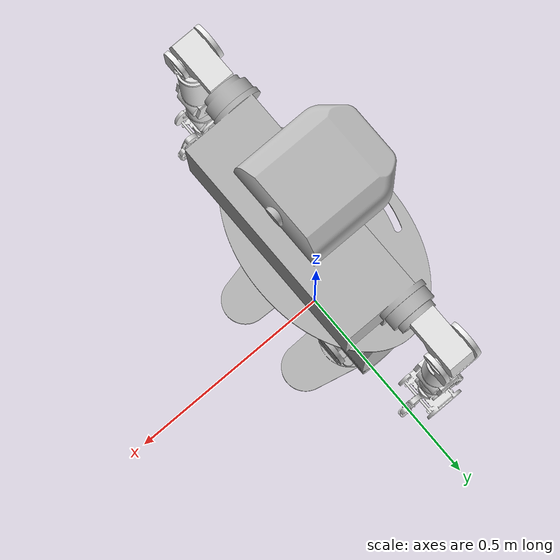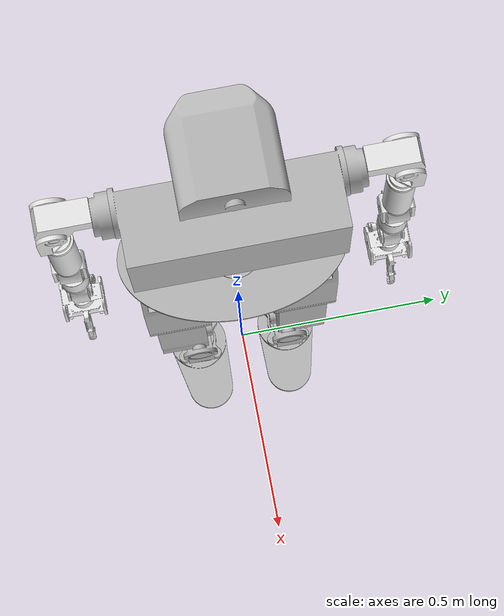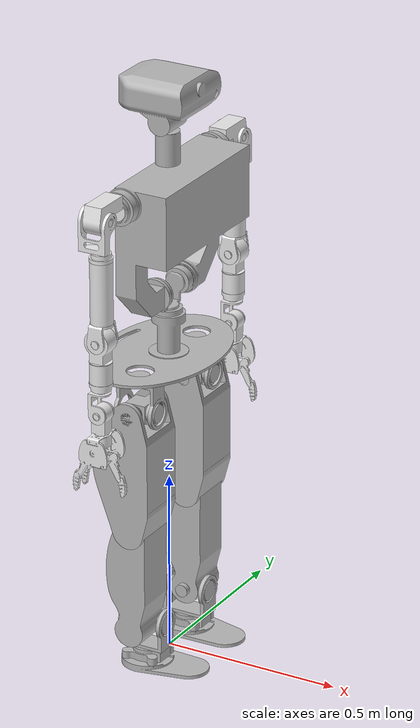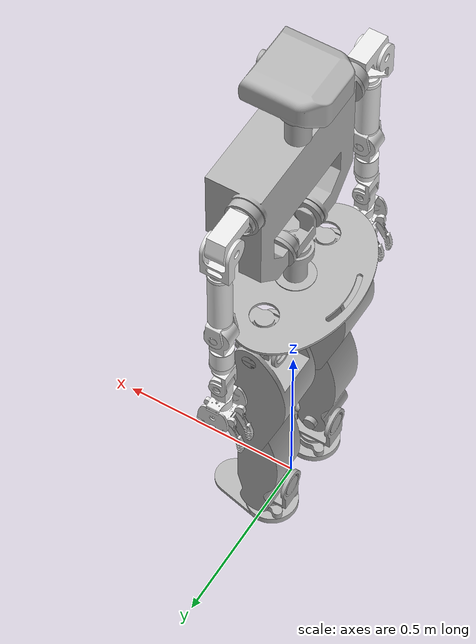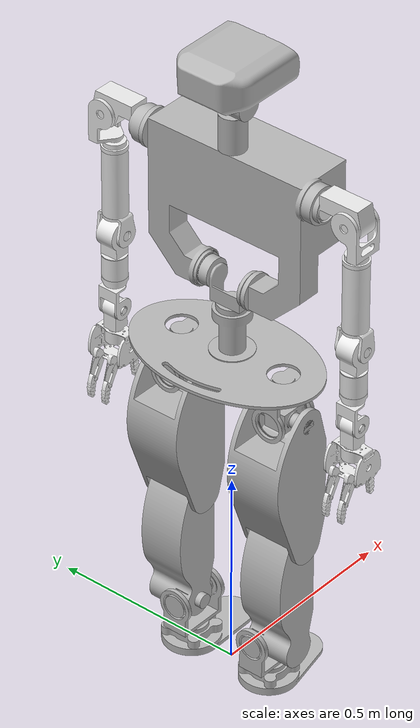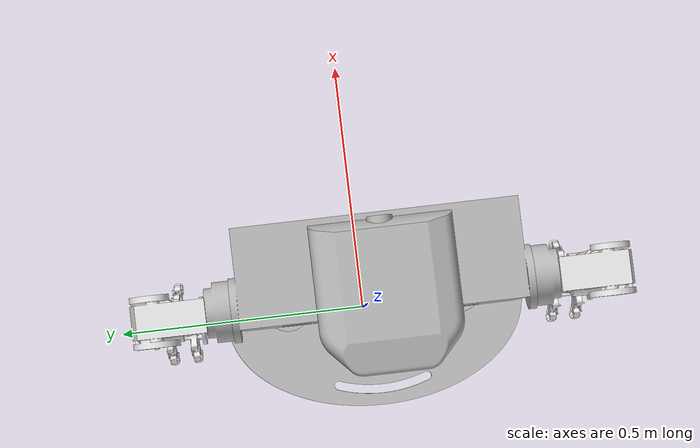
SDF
<sdf version="1.4">
 <model name="teo">
  <pose>0 0 0.856 0 0 0</pose>
  <link name="waist">
   <inertial>
    <pose>0 0 0.030531 0 -0 0</pose>
    <mass>1</mass>
    <inertia>
     <ixx>0.0167296</ixx>
     <ixy>-4.1e-07</ixy>
     <ixz>-0.00040359</ixz>
     <iyy>0.00875441</iyy>
     <iyz>8e-08</iyz>
     <izz>0.020584</izz>
    </inertia>
   </inertial>
   <collision name="waist_collision">
    <geometry>
     <mesh><scale>1 1 1</scale><uri>model://teo_description/meshes/torso/waist-base.stl</uri></mesh>
    </geometry>
   </collision>
   <collision name="waist_collision_waist_1">
    <pose>0 0 0.07336 0 -0 0</pose>
    <geometry>
     <mesh><scale>1 1 1</scale><uri>model://teo_description/meshes/torso/waist-link.stl</uri></mesh>
    </geometry>
   </collision>
   <visual name="waist_visual">
    <geometry>
     <mesh><scale>1 1 1</scale><uri>model://teo_description/meshes/torso/waist-base.stl</uri></mesh>
    </geometry>
   </visual>
   <visual name="waist_visual_waist_1">
    <pose>0 0 0.07336 0 -0 0</pose>
    <geometry>
     <mesh><scale>1 1 1</scale><uri>model://teo_description/meshes/torso/waist-link.stl</uri></mesh>
    </geometry>
   </visual>
   <velocity_decay><linear>0</linear><angular>0</angular></velocity_decay>
  </link>
  <joint name="base_joint" type="revolute">
   <parent>world</parent>
   <child>waist</child>
   <axis>
    <limit><lower>0</lower><upper>0</upper></limit>
    <dynamics><damping>0</damping></dynamics>
    <xyz>0 0 1</xyz>
   </axis>
  </joint>
  <link name="l_hip_yaw_link">
   <pose>0 0.146 -0.10237 0 -0 0</pose>
   <inertial>
    <mass>1</mass>
    <inertia>
     <ixx>0.00034076</ixx>
     <ixy>-0</ixy>
     <ixz>5.4e-07</ixz>
     <iyy>0.00057638</iyy>
     <iyz>-0</iyz>
     <izz>0.00037186</izz>
    </inertia>
   </inertial>
   <collision name="l_hip_yaw_link_collision">
    <geometry>
     <mesh><scale>1 1 1</scale><uri>model://teo_description/meshes/legs/l_hip_yaw.stl</uri></mesh>
    </geometry>
    <surface><friction><ode><mu>0.9</mu><mu2>0.9</mu2></ode></friction></surface>
   </collision>
   <visual name="l_hip_yaw_link_visual">
    <geometry>
     <mesh><scale>1 1 1</scale><uri>model://teo_description/meshes/legs/l_hip_yaw.stl</uri></mesh>
    </geometry>
   </visual>
   <velocity_decay><linear>0</linear><angular>0</angular></velocity_decay>
  </link>
  <joint name="l_hip_yaw" type="revolute">
   <child>l_hip_yaw_link</child>
   <parent>waist</parent>
   <axis>
    <xyz>0 0 1</xyz>
    <limit><lower>-0.523599</lower><upper>0.418879</upper><effort>45</effort><velocity>4</velocity></limit>
    <dynamics><damping>1</damping></dynamics>
   </axis>
  </joint>
  <link name="l_hip_roll_link">
   <pose>0 0.146 -0.10237 0 -0 0</pose>
   <inertial>
    <pose>0 -0 -0.017753 0 -0 0</pose>
    <mass>1</mass>
    <inertia>
     <ixx>0.00036847</ixx>
     <ixy>-4.34e-06</ixy>
     <ixz>1e-08</ixz>
     <iyy>0.00019052</iyy>
     <iyz>-0</iyz>
     <izz>0.00045536</izz>
    </inertia>
   </inertial>
   <collision name="l_hip_roll_link_collision">
    <geometry>
     <mesh><scale>1 1 1</scale><uri>model://teo_description/meshes/legs/l_hip_pitch.stl</uri></mesh>
    </geometry>
    <surface><friction><ode><mu>0.9</mu><mu2>0.9</mu2></ode></friction></surface>
   </collision>
   <visual name="l_hip_roll_link_visual">
    <geometry>
     <mesh><scale>1 1 1</scale><uri>model://teo_description/meshes/legs/l_hip_pitch.stl</uri></mesh>
    </geometry>
   </visual>
   <velocity_decay><linear>0</linear><angular>0</angular></velocity_decay>
  </link>
  <joint name="l_hip_roll" type="revolute">
   <child>l_hip_roll_link</child>
   <parent>l_hip_yaw_link</parent>
   <axis>
    <xyz>1 0 0</xyz>
    <limit><lower>-0.698132</lower><upper>0.523599</upper><effort>65</effort><velocity>4</velocity></limit>
    <dynamics><damping>1</damping></dynamics>
   </axis>
  </joint>
  <link name="l_femur_link">
   <pose>0 0.146 -0.10237 0 -0 0</pose>
   <inertial>
    <pose>0 -0 -0.17257 0 -0 0</pose>
    <mass>1</mass>
    <inertia>
     <ixx>0.0445365</ixx>
     <ixy>1e-08</ixy>
     <ixz>0.00130498</ixz>
     <iyy>0.0446349</iyy>
     <iyz>-4e-08</iyz>
     <izz>0.0220708</izz>
    </inertia>
   </inertial>
   <collision name="l_femur_link_collision">
    <geometry>
     <mesh><scale>1 1 1</scale><uri>model://teo_description/meshes/legs/l_femur.stl</uri></mesh>
    </geometry>
    <surface><friction><ode><mu>0.9</mu><mu2>0.9</mu2></ode></friction></surface>
   </collision>
   <visual name="l_femur_link_visual">
    <geometry>
     <mesh><scale>1 1 1</scale><uri>model://teo_description/meshes/legs/l_femur.stl</uri></mesh>
    </geometry>
   </visual>
   <velocity_decay><linear>0</linear><angular>0</angular></velocity_decay>
  </link>
  <joint name="l_hip_pitch" type="revolute">
   <child>l_femur_link</child>
   <parent>l_hip_roll_link</parent>
   <axis>
    <xyz>0 1 0</xyz>
    <limit><lower>-2.0944</lower><upper>0.785398</upper><effort>60</effort><velocity>4</velocity></limit>
    <dynamics><damping>1</damping></dynamics>
   </axis>
  </joint>
  <link name="l_tibia_link">
   <pose>0 0.146 -0.43237 0 -0 0</pose>
   <inertial>
    <pose>0 -0 -0.142721 0 -0 0</pose>
    <mass>1</mass>
    <inertia>
     <ixx>0.0464421</ixx>
     <ixy>-0</ixy>
     <ixz>-7.32e-06</ixz>
     <iyy>0.0454827</iyy>
     <iyz>1e-08</iyz>
     <izz>0.00816616</izz>
    </inertia>
   </inertial>
   <collision name="l_tibia_link_collision">
    <geometry>
     <mesh><scale>1 1 1</scale><uri>model://teo_description/meshes/legs/l_tibia.stl</uri></mesh>
    </geometry>
    <surface><friction><ode><mu>0.9</mu><mu2>0.9</mu2></ode></friction></surface>
   </collision>
   <visual name="l_tibia_link_visual">
    <geometry>
     <mesh><scale>1 1 1</scale><uri>model://teo_description/meshes/legs/l_tibia.stl</uri></mesh>
    </geometry>
   </visual>
   <velocity_decay><linear>0</linear><angular>0</angular></velocity_decay>
  </link>
  <joint name="l_knee_pitch" type="revolute">
   <child>l_tibia_link</child>
   <parent>l_femur_link</parent>
   <axis>
    <xyz>0 1 0</xyz>
    <limit><lower>0</lower><upper>1.5708</upper><effort>140</effort><velocity>4</velocity></limit>
    <dynamics><damping>1</damping></dynamics>
   </axis>
  </joint>
  <link name="l_ankle_pitch_link">
   <pose>0 0.113 -0.73237 0 -0 0</pose>
   <inertial>
    <pose>0 -0 0.028198 0 -0 0</pose>
    <mass>1</mass>
    <inertia>
     <ixx>0.00010237</ixx>
     <ixy>-1.4e-05</ixy>
     <ixz>0</ixz>
     <iyy>0.00035107</iyy>
     <iyz>0</iyz>
     <izz>0.00035006</izz>
    </inertia>
   </inertial>
   <collision name="l_ankle_pitch_link_collision">
    <geometry>
     <mesh><scale>1 1 1</scale><uri>model://teo_description/meshes/legs/l_ankle_pitch.stl</uri></mesh>
    </geometry>
    <surface><friction><ode><mu>0.9</mu><mu2>0.9</mu2></ode></friction></surface>
   </collision>
   <visual name="l_ankle_pitch_link_visual">
    <geometry>
     <mesh><scale>1 1 1</scale><uri>model://teo_description/meshes/legs/l_ankle_pitch.stl</uri></mesh>
    </geometry>
   </visual>
   <velocity_decay><linear>0</linear><angular>0</angular></velocity_decay>
  </link>
  <joint name="l_ankle_pitch" type="revolute">
   <child>l_ankle_pitch_link</child>
   <parent>l_tibia_link</parent>
   <axis>
    <xyz>0 1 0</xyz>
    <limit><lower>-0.349066</lower><upper>0.349066</upper><effort>85</effort><velocity>4</velocity></limit>
    <dynamics><damping>1</damping></dynamics>
   </axis>
  </joint>
  <link name="l_astragalus_link">
   <pose>0 0.113 -0.73237 0 -0 0</pose>
   <inertial>
    <pose>0.0113145 -0.001224 -0.077401 0 -0 0</pose>
    <mass>2</mass>
    <inertia>
     <ixx>0.00341467</ixx>
     <ixy>-7.94621e-05</ixy>
     <ixz>0.000895215</ixz>
     <iyy>0.0049938</iyy>
     <iyz>-7.78808e-05</iyz>
     <izz>0.00297552</izz>
    </inertia>
   </inertial>
   <collision name="l_astragalus_link_collision">
    <geometry>
     <mesh><scale>1 1 1</scale><uri>model://teo_description/meshes/legs/l_ankle_roll.stl</uri></mesh>
    </geometry>
    <surface>
     <contact><ode><kp>1e+06</kp><kd>100</kd><max_vel>1</max_vel><min_depth>0</min_depth></ode></contact>
     <friction><ode><mu>1</mu><mu2>1</mu2><fdir1>0 0 1</fdir1></ode></friction>
    </surface>
   </collision>
   <collision name="l_astragalus_link_collision_l_astragalus_link_1">
    <pose>0 0 -0.073 0 -0 0</pose>
    <geometry>
     <mesh><scale>1 1 1</scale><uri>model://teo_description/meshes/legs/l_ankle_sensorFT.stl</uri></mesh>
    </geometry>
    <surface>
     <contact><ode><kp>1e+06</kp><kd>100</kd><max_vel>1</max_vel><min_depth>0</min_depth></ode></contact>
     <friction><ode><mu>1</mu><mu2>1</mu2><fdir1>0 0 1</fdir1></ode></friction>
    </surface>
   </collision>
   <collision name="l_astragalus_link_collision_l_sole">
    <pose>0 0 -0.124 0 -0 0</pose>
    <geometry>
     <mesh><scale>1 1 1</scale><uri>model://teo_description/meshes/legs/l_foot.stl</uri></mesh>
    </geometry>
    <surface>
     <contact><ode><kp>1e+06</kp><kd>100</kd><max_vel>1</max_vel><min_depth>0</min_depth></ode></contact>
     <friction><ode><mu>1</mu><mu2>1</mu2><fdir1>0 0 1</fdir1></ode></friction>
    </surface>
    <surface>
     <contact><ode><max_vel>1</max_vel><min_depth>0.003</min_depth></ode></contact>
     <friction><ode><mu>0.9</mu><mu2>0.9</mu2><fdir1>1 0 0</fdir1></ode></friction>
    </surface>
   </collision>
   <collision name="l_astragalus_link_collision_l_sole_1">
    <pose>0 0 -0.124 0 -0 0</pose>
    <geometry>
     <mesh><scale>1 1 1</scale><uri>model://teo_description/meshes/legs/l_union_sensorFT_foot.stl</uri></mesh>
    </geometry>
    <surface>
     <contact><ode><kp>1e+06</kp><kd>100</kd><max_vel>1</max_vel><min_depth>0</min_depth></ode></contact>
     <friction><ode><mu>1</mu><mu2>1</mu2><fdir1>0 0 1</fdir1></ode></friction>
    </surface>
   </collision>
   <visual name="l_astragalus_link_visual">
    <geometry>
     <mesh><scale>1 1 1</scale><uri>model://teo_description/meshes/legs/l_ankle_roll.stl</uri></mesh>
    </geometry>
   </visual>
   <visual name="l_astragalus_link_visual_l_astragalus_link_1">
    <pose>0 0 -0.073 0 -0 0</pose>
    <geometry>
     <mesh><scale>1 1 1</scale><uri>model://teo_description/meshes/legs/l_ankle_sensorFT.stl</uri></mesh>
    </geometry>
   </visual>
   <visual name="l_astragalus_link_visual_l_sole">
    <pose>0 0 -0.124 0 -0 0</pose>
    <geometry>
     <mesh><scale>1 1 1</scale><uri>model://teo_description/meshes/legs/l_foot.stl</uri></mesh>
    </geometry>
   </visual>
   <visual name="l_astragalus_link_visual_l_sole_1">
    <pose>0 0 -0.124 0 -0 0</pose>
    <geometry>
     <mesh><scale>1 1 1</scale><uri>model://teo_description/meshes/legs/l_union_sensorFT_foot.stl</uri></mesh>
    </geometry>
   </visual>
   <velocity_decay><linear>0</linear><angular>0</angular></velocity_decay>
   <velocity_decay><linear>0</linear><angular>0</angular></velocity_decay>
  </link>
  <joint name="l_ankle_roll" type="revolute">
   <child>l_astragalus_link</child>
   <parent>l_ankle_pitch_link</parent>
   <axis>
    <xyz>1 0 0</xyz>
    <limit><lower>-1.48353</lower><upper>1.48353</upper><effort>65</effort><velocity>4</velocity></limit>
    <dynamics><damping>1</damping></dynamics>
   </axis>
  </joint>
  <link name="r_hip_yaw_link">
   <pose>0 -0.146 -0.10237 0 -0 0</pose>
   <inertial>
    <mass>1</mass>
    <inertia>
     <ixx>0.00034076</ixx>
     <ixy>0</ixy>
     <ixz>5.4e-07</ixz>
     <iyy>0.00057638</iyy>
     <iyz>0</iyz>
     <izz>0.00037186</izz>
    </inertia>
   </inertial>
   <collision name="r_hip_yaw_link_collision">
    <geometry>
     <mesh><scale>1 1 1</scale><uri>model://teo_description/meshes/legs/r_hip_yaw.stl</uri></mesh>
    </geometry>
    <surface><friction><ode><mu>0.9</mu><mu2>0.9</mu2></ode></friction></surface>
   </collision>
   <visual name="r_hip_yaw_link_visual">
    <geometry>
     <mesh><scale>1 1 1</scale><uri>model://teo_description/meshes/legs/r_hip_yaw.stl</uri></mesh>
    </geometry>
   </visual>
   <velocity_decay><linear>0</linear><angular>0</angular></velocity_decay>
  </link>
  <joint name="r_hip_yaw" type="revolute">
   <child>r_hip_yaw_link</child>
   <parent>waist</parent>
   <axis>
    <xyz>0 0 1</xyz>
    <limit><lower>-0.523599</lower><upper>0.418879</upper><effort>45</effort><velocity>4</velocity></limit>
    <dynamics><damping>1</damping></dynamics>
   </axis>
  </joint>
  <link name="r_hip_roll_link">
   <pose>0 -0.146 -0.10237 0 -0 0</pose>
   <inertial>
    <pose>0 0 -0.017753 0 -0 0</pose>
    <mass>1</mass>
    <inertia>
     <ixx>0.00036847</ixx>
     <ixy>4.34e-06</ixy>
     <ixz>1e-08</ixz>
     <iyy>0.00019052</iyy>
     <iyz>0</iyz>
     <izz>0.00045536</izz>
    </inertia>
   </inertial>
   <collision name="r_hip_roll_link_collision">
    <geometry>
     <mesh><scale>1 1 1</scale><uri>model://teo_description/meshes/legs/r_hip_pitch.stl</uri></mesh>
    </geometry>
    <surface><friction><ode><mu>0.9</mu><mu2>0.9</mu2></ode></friction></surface>
   </collision>
   <visual name="r_hip_roll_link_visual">
    <geometry>
     <mesh><scale>1 1 1</scale><uri>model://teo_description/meshes/legs/r_hip_pitch.stl</uri></mesh>
    </geometry>
   </visual>
   <velocity_decay><linear>0</linear><angular>0</angular></velocity_decay>
  </link>
  <joint name="r_hip_roll" type="revolute">
   <child>r_hip_roll_link</child>
   <parent>r_hip_yaw_link</parent>
   <axis>
    <xyz>1 0 0</xyz>
    <limit><lower>-0.698132</lower><upper>0.523599</upper><effort>65</effort><velocity>4</velocity></limit>
    <dynamics><damping>1</damping></dynamics>
   </axis>
  </joint>
  <link name="r_femur_link">
   <pose>0 -0.146 -0.10237 0 -0 0</pose>
   <inertial>
    <pose>0 0 -0.17257 0 -0 0</pose>
    <mass>1</mass>
    <inertia>
     <ixx>0.0445365</ixx>
     <ixy>-1e-08</ixy>
     <ixz>0.00130498</ixz>
     <iyy>0.0446349</iyy>
     <iyz>4e-08</iyz>
     <izz>0.0220708</izz>
    </inertia>
   </inertial>
   <collision name="r_femur_link_collision">
    <geometry>
     <mesh><scale>1 1 1</scale><uri>model://teo_description/meshes/legs/r_femur.stl</uri></mesh>
    </geometry>
    <surface><friction><ode><mu>0.9</mu><mu2>0.9</mu2></ode></friction></surface>
   </collision>
   <visual name="r_femur_link_visual">
    <geometry>
     <mesh><scale>1 1 1</scale><uri>model://teo_description/meshes/legs/r_femur.stl</uri></mesh>
    </geometry>
   </visual>
   <velocity_decay><linear>0</linear><angular>0</angular></velocity_decay>
  </link>
  <joint name="r_hip_pitch" type="revolute">
   <child>r_femur_link</child>
   <parent>r_hip_roll_link</parent>
   <axis>
    <xyz>0 1 0</xyz>
    <limit><lower>-2.0944</lower><upper>0.785398</upper><effort>60</effort><velocity>4</velocity></limit>
    <dynamics><damping>1</damping></dynamics>
   </axis>
  </joint>
  <link name="r_tibia_link">
   <pose>0 -0.146 -0.43237 0 -0 0</pose>
   <inertial>
    <pose>0 0 -0.142721 0 -0 0</pose>
    <mass>1</mass>
    <inertia>
     <ixx>0.0464421</ixx>
     <ixy>0</ixy>
     <ixz>-7.32e-06</ixz>
     <iyy>0.0454827</iyy>
     <iyz>-1e-08</iyz>
     <izz>0.00816616</izz>
    </inertia>
   </inertial>
   <collision name="r_tibia_link_collision">
    <geometry>
     <mesh><scale>1 1 1</scale><uri>model://teo_description/meshes/legs/r_tibia.stl</uri></mesh>
    </geometry>
    <surface><friction><ode><mu>0.9</mu><mu2>0.9</mu2></ode></friction></surface>
   </collision>
   <visual name="r_tibia_link_visual">
    <geometry>
     <mesh><scale>1 1 1</scale><uri>model://teo_description/meshes/legs/r_tibia.stl</uri></mesh>
    </geometry>
   </visual>
   <velocity_decay><linear>0</linear><angular>0</angular></velocity_decay>
  </link>
  <joint name="r_knee_pitch" type="revolute">
   <child>r_tibia_link</child>
   <parent>r_femur_link</parent>
   <axis>
    <xyz>0 1 0</xyz>
    <limit><lower>0</lower><upper>1.5708</upper><effort>140</effort><velocity>4</velocity></limit>
    <dynamics><damping>1</damping></dynamics>
   </axis>
  </joint>
  <link name="r_ankle_pitch_link">
   <pose>0 -0.113 -0.73237 0 -0 0</pose>
   <inertial>
    <pose>0 0 0.028198 0 -0 0</pose>
    <mass>1</mass>
    <inertia>
     <ixx>0.00010237</ixx>
     <ixy>1.4e-05</ixy>
     <ixz>0</ixz>
     <iyy>0.00035107</iyy>
     <iyz>-0</iyz>
     <izz>0.00035006</izz>
    </inertia>
   </inertial>
   <collision name="r_ankle_pitch_link_collision">
    <geometry>
     <mesh><scale>1 1 1</scale><uri>model://teo_description/meshes/legs/r_ankle_pitch.stl</uri></mesh>
    </geometry>
    <surface><friction><ode><mu>0.9</mu><mu2>0.9</mu2></ode></friction></surface>
   </collision>
   <visual name="r_ankle_pitch_link_visual">
    <geometry>
     <mesh><scale>1 1 1</scale><uri>model://teo_description/meshes/legs/r_ankle_pitch.stl</uri></mesh>
    </geometry>
   </visual>
   <velocity_decay><linear>0</linear><angular>0</angular></velocity_decay>
  </link>
  <joint name="r_ankle_pitch" type="revolute">
   <child>r_ankle_pitch_link</child>
   <parent>r_tibia_link</parent>
   <axis>
    <xyz>0 1 0</xyz>
    <limit><lower>-0.349066</lower><upper>0.349066</upper><effort>85</effort><velocity>4</velocity></limit>
    <dynamics><damping>1</damping></dynamics>
   </axis>
  </joint>
  <link name="r_astragalus_link">
   <pose>0 -0.113 -0.73237 0 -0 0</pose>
   <inertial>
    <pose>0.0113145 0.001224 -0.077401 0 -0 0</pose>
    <mass>2</mass>
    <inertia>
     <ixx>0.00341467</ixx>
     <ixy>7.94621e-05</ixy>
     <ixz>0.000895215</ixz>
     <iyy>0.0049938</iyy>
     <iyz>7.78808e-05</iyz>
     <izz>0.00297552</izz>
    </inertia>
   </inertial>
   <collision name="r_astragalus_link_collision">
    <geometry>
     <mesh><scale>1 1 1</scale><uri>model://teo_description/meshes/legs/r_ankle_roll.stl</uri></mesh>
    </geometry>
    <surface>
     <contact><ode><kp>1e+06</kp><kd>100</kd><max_vel>1</max_vel><min_depth>0</min_depth></ode></contact>
     <friction><ode><mu>1</mu><mu2>1</mu2><fdir1>0 0 1</fdir1></ode></friction>
    </surface>
   </collision>
   <collision name="r_astragalus_link_collision_r_astragalus_link_1">
    <pose>0 0 -0.073 0 -0 0</pose>
    <geometry>
     <mesh><scale>1 1 1</scale><uri>model://teo_description/meshes/legs/r_ankle_sensorFT.stl</uri></mesh>
    </geometry>
    <surface>
     <contact><ode><kp>1e+06</kp><kd>100</kd><max_vel>1</max_vel><min_depth>0</min_depth></ode></contact>
     <friction><ode><mu>1</mu><mu2>1</mu2><fdir1>0 0 1</fdir1></ode></friction>
    </surface>
   </collision>
   <collision name="r_astragalus_link_collision_r_sole">
    <pose>0 0 -0.124 0 -0 0</pose>
    <geometry>
     <mesh><scale>1 1 1</scale><uri>model://teo_description/meshes/legs/r_foot.stl</uri></mesh>
    </geometry>
    <surface>
     <contact><ode><kp>1e+06</kp><kd>100</kd><max_vel>1</max_vel><min_depth>0</min_depth></ode></contact>
     <friction><ode><mu>1</mu><mu2>1</mu2><fdir1>0 0 1</fdir1></ode></friction>
    </surface>
    <surface>
     <contact><ode><max_vel>1</max_vel><min_depth>0.003</min_depth></ode></contact>
     <friction><ode><mu>0.9</mu><mu2>0.9</mu2><fdir1>1 0 0</fdir1></ode></friction>
    </surface>
   </collision>
   <collision name="r_astragalus_link_collision_r_sole_1">
    <pose>0 0 -0.124 0 -0 0</pose>
    <geometry>
     <mesh><scale>1 1 1</scale><uri>model://teo_description/meshes/legs/r_union_sensorFT_foot.stl</uri></mesh>
    </geometry>
    <surface>
     <contact><ode><kp>1e+06</kp><kd>100</kd><max_vel>1</max_vel><min_depth>0</min_depth></ode></contact>
     <friction><ode><mu>1</mu><mu2>1</mu2><fdir1>0 0 1</fdir1></ode></friction>
    </surface>
   </collision>
   <visual name="r_astragalus_link_visual">
    <geometry>
     <mesh><scale>1 1 1</scale><uri>model://teo_description/meshes/legs/r_ankle_roll.stl</uri></mesh>
    </geometry>
   </visual>
   <visual name="r_astragalus_link_visual_r_astragalus_link_1">
    <pose>0 0 -0.073 0 -0 0</pose>
    <geometry>
     <mesh><scale>1 1 1</scale><uri>model://teo_description/meshes/legs/r_ankle_sensorFT.stl</uri></mesh>
    </geometry>
   </visual>
   <visual name="r_astragalus_link_visual_r_sole">
    <pose>0 0 -0.124 0 -0 0</pose>
    <geometry>
     <mesh><scale>1 1 1</scale><uri>model://teo_description/meshes/legs/r_foot.stl</uri></mesh>
    </geometry>
   </visual>
   <visual name="r_astragalus_link_visual_r_sole_1">
    <pose>0 0 -0.124 0 -0 0</pose>
    <geometry>
     <mesh><scale>1 1 1</scale><uri>model://teo_description/meshes/legs/r_union_sensorFT_foot.stl</uri></mesh>
    </geometry>
   </visual>
   <velocity_decay><linear>0</linear><angular>0</angular></velocity_decay>
   <velocity_decay><linear>0</linear><angular>0</angular></velocity_decay>
  </link>
  <joint name="r_ankle_roll" type="revolute">
   <child>r_astragalus_link</child>
   <parent>r_ankle_pitch_link</parent>
   <axis>
    <xyz>1 0 0</xyz>
    <limit><lower>-1.48353</lower><upper>1.48353</upper><effort>65</effort><velocity>4</velocity></limit>
    <dynamics><damping>1</damping></dynamics>
   </axis>
  </joint>
  <link name="waist_yaw_link">
   <pose>0 0 0.1907 0 -0 0</pose>
   <inertial>
    <pose>0 0 -0.02463 0 -0 0</pose>
    <mass>1</mass>
    <inertia>
     <ixx>0.00028026</ixx>
     <ixy>-2.9e-07</ixy>
     <ixz>-4.22e-06</ixz>
     <iyy>0.0001275</iyy>
     <iyz>4.4e-07</iyz>
     <izz>0.00020857</izz>
    </inertia>
   </inertial>
   <collision name="waist_yaw_link_collision">
    <pose>0 0 -0.001 0 -0 0</pose>
    <geometry>
     <mesh><scale>1 1 1</scale><uri>model://teo_description/meshes/torso/waist-yaw.stl</uri></mesh>
    </geometry>
    <surface><friction><ode><mu>0.9</mu><mu2>0.9</mu2></ode></friction></surface>
   </collision>
   <visual name="waist_yaw_link_visual">
    <pose>0 0 -0.001 0 -0 0</pose>
    <geometry>
     <mesh><scale>1 1 1</scale><uri>model://teo_description/meshes/torso/waist-yaw.stl</uri></mesh>
    </geometry>
   </visual>
   <velocity_decay><linear>0</linear><angular>0</angular></velocity_decay>
  </link>
  <joint name="waist_yaw" type="revolute">
   <child>waist_yaw_link</child>
   <parent>waist</parent>
   <axis>
    <xyz>0 0 1</xyz>
    <limit><lower>-0.785398</lower><upper>0.523599</upper><effort>30</effort><velocity>3</velocity></limit>
   </axis>
  </joint>
  <link name="waist_pitch_link">
   <pose>0 0 0.1907 0 -0 0</pose>
   <inertial>
    <pose>0 0 0.221233 0 -0 0</pose>
    <mass>1</mass>
    <inertia>
     <ixx>0.00100973</ixx>
     <ixy>0</ixy>
     <ixz>0</ixz>
     <iyy>0.00019175</iyy>
     <iyz>0</iyz>
     <izz>0.00100972</izz>
    </inertia>
   </inertial>
   <collision name="waist_pitch_link_collision">
    <geometry>
     <mesh><scale>1 1 1</scale><uri>model://teo_description/meshes/torso/waist-pitch.stl</uri></mesh>
    </geometry>
    <surface><friction><ode><mu>0.9</mu><mu2>0.9</mu2></ode></friction></surface>
   </collision>
   <collision name="waist_pitch_link_collision_waist_pitch_link_1">
    <pose>0 0 0.06 0 -0 0</pose>
    <geometry>
     <mesh><scale>1 1 1</scale><uri>model://teo_description/meshes/torso/torso.stl</uri></mesh>
    </geometry>
    <surface><friction><ode><mu>0.9</mu><mu2>0.9</mu2></ode></friction></surface>
   </collision>
   <collision name="waist_pitch_link_collision_waist_pitch_link_2">
    <pose>0 0.25486 0.305 0 -0 0</pose>
    <geometry>
     <mesh><scale>1 1 1</scale><uri>model://teo_description/meshes/torso/L-torso-shoulder.stl</uri></mesh>
    </geometry>
    <surface><friction><ode><mu>0.9</mu><mu2>0.9</mu2></ode></friction></surface>
   </collision>
   <collision name="waist_pitch_link_collision_waist_pitch_link_3">
    <pose>0 -0.25486 0.305 0 -0 0</pose>
    <geometry>
     <mesh><scale>1 1 1</scale><uri>model://teo_description/meshes/torso/R-torso-shoulder.stl</uri></mesh>
    </geometry>
    <surface><friction><ode><mu>0.9</mu><mu2>0.9</mu2></ode></friction></surface>
   </collision>
   <collision name="waist_pitch_link_collision_waist_pitch_link_4">
    <pose>0 0 0.346 0 -0 0</pose>
    <geometry><mesh><scale>1 1 1</scale><uri>model://teo_description/meshes/torso/neck.stl</uri></mesh></geometry>
    <surface><friction><ode><mu>0.9</mu><mu2>0.9</mu2></ode></friction></surface>
   </collision>
   <collision name="waist_pitch_link_collision_waist_pitch_link_5">
    <pose>0 0 0.434 0 -0 0</pose>
    <geometry><mesh><scale>1 1 1</scale><uri>model://teo_description/meshes/torso/head.stl</uri></mesh></geometry>
    <surface><friction><ode><mu>0.9</mu><mu2>0.9</mu2></ode></friction></surface>
   </collision>
   <visual name="waist_pitch_link_visual">
    <geometry>
     <mesh><scale>1 1 1</scale><uri>model://teo_description/meshes/torso/waist-pitch.stl</uri></mesh>
    </geometry>
   </visual>
   <visual name="waist_pitch_link_visual_waist_pitch_link_1">
    <pose>0 0 0.06 0 -0 0</pose>
    <geometry>
     <mesh><scale>1 1 1</scale><uri>model://teo_description/meshes/torso/torso.stl</uri></mesh>
    </geometry>
   </visual>
   <visual name="waist_pitch_link_visual_waist_pitch_link_2">
    <pose>0 0.25486 0.305 0 -0 0</pose>
    <geometry>
     <mesh><scale>1 1 1</scale><uri>model://teo_description/meshes/torso/L-torso-shoulder.stl</uri></mesh>
    </geometry>
   </visual>
   <visual name="waist_pitch_link_visual_waist_pitch_link_3">
    <pose>0 -0.25486 0.305 0 -0 0</pose>
    <geometry>
     <mesh><scale>1 1 1</scale><uri>model://teo_description/meshes/torso/R-torso-shoulder.stl</uri></mesh>
    </geometry>
   </visual>
   <visual name="waist_pitch_link_visual_waist_pitch_link_4">
    <pose>0 0 0.346 0 -0 0</pose>
    <geometry><mesh><scale>1 1 1</scale><uri>model://teo_description/meshes/torso/neck.stl</uri></mesh></geometry>
   </visual>
   <visual name="waist_pitch_link_visual_waist_pitch_link_5">
    <pose>0 0 0.434 0 -0 0</pose>
    <geometry><mesh><scale>1 1 1</scale><uri>model://teo_description/meshes/torso/head.stl</uri></mesh></geometry>
   </visual>
   <velocity_decay><linear>0</linear><angular>0</angular></velocity_decay>
  </link>
  <joint name="waist_pitch" type="revolute">
   <child>waist_pitch_link</child>
   <parent>waist_yaw_link</parent>
   <axis>
    <xyz>0 1 0</xyz>
    <limit><lower>-0.785398</lower><upper>0.523599</upper><effort>30</effort><velocity>3</velocity></limit>
   </axis>
  </joint>
  <link name="l_shoulder_pitch_link">
   <pose>0 0.34 0.4957 0 -0 0</pose>
   <inertial>
    <mass>0.005</mass>
    <inertia>
     <ixx>0.00059121</ixx>
     <ixy>6.03e-06</ixy>
     <ixz>1.03e-06</ixz>
     <iyy>0.00024956</iyy>
     <iyz>5.131e-05</iyz>
     <izz>0.00050653</izz>
    </inertia>
   </inertial>
   <collision name="l_shoulder_pitch_link_collision">
    <geometry>
     <mesh><scale>1 1 1</scale><uri>model://teo_description/meshes/arms/l_shoulder_pitch.stl</uri></mesh>
    </geometry>
    <surface><friction><ode><mu>0.9</mu><mu2>0.9</mu2></ode></friction></surface>
   </collision>
   <visual name="l_shoulder_pitch_link_visual">
    <geometry>
     <mesh><scale>1 1 1</scale><uri>model://teo_description/meshes/arms/l_shoulder_pitch.stl</uri></mesh>
    </geometry>
    <material><script><name>Gazebo/White</name><uri>__default__</uri></script></material>
   </visual>
   <velocity_decay><linear>0</linear><angular>0</angular></velocity_decay>
  </link>
  <joint name="l_shoulder_pitch" type="revolute">
   <child>l_shoulder_pitch_link</child>
   <parent>waist_pitch_link</parent>
   <axis>
    <xyz>0 1 0</xyz>
    <limit><lower>-3.14159</lower><upper>3.14159</upper><effort>30</effort><velocity>3</velocity></limit>
   </axis>
  </joint>
  <link name="l_shoulder_roll_link">
   <pose>0 0.34 0.4957 0 -0 0</pose>
   <inertial>
    <mass>0.005</mass>
    <inertia>
     <ixx>0.00018036</ixx>
     <ixy>-7.73e-06</ixy>
     <ixz>2.406e-05</ixz>
     <iyy>0.00024499</iyy>
     <iyz>1.826e-05</iyz>
     <izz>0.00013143</izz>
    </inertia>
   </inertial>
   <collision name="l_shoulder_roll_link_collision">
    <geometry>
     <mesh><scale>1 1 1</scale><uri>model://teo_description/meshes/arms/l_shoulder_roll.stl</uri></mesh>
    </geometry>
    <surface><friction><ode><mu>0.9</mu><mu2>0.9</mu2></ode></friction></surface>
   </collision>
   <visual name="l_shoulder_roll_link_visual">
    <geometry>
     <mesh><scale>1 1 1</scale><uri>model://teo_description/meshes/arms/l_shoulder_roll.stl</uri></mesh>
    </geometry>
    <material><script><name>Gazebo/White</name><uri>__default__</uri></script></material>
   </visual>
   <velocity_decay><linear>0</linear><angular>0</angular></velocity_decay>
  </link>
  <joint name="l_shoulder_roll" type="revolute">
   <child>l_shoulder_roll_link</child>
   <parent>l_shoulder_pitch_link</parent>
   <axis>
    <xyz>1 0 0</xyz>
    <limit><lower>-0.785398</lower><upper>2.0944</upper><effort>30</effort><velocity>3</velocity></limit>
   </axis>
  </joint>
  <link name="l_shoulder_yaw_link">
   <pose>0 0.34 0.4957 0 -0 0</pose>
   <inertial>
    <mass>1.75063</mass>
    <inertia>
     <ixx>0.00227681</ixx>
     <ixy>0</ixy>
     <ixz>0</ixz>
     <iyy>0.00224821</iyy>
     <iyz>-6.84e-06</iyz>
     <izz>0.00032283</izz>
    </inertia>
   </inertial>
   <collision name="l_shoulder_yaw_link_collision">
    <pose>0 0 -0.12126 0 -0 0</pose>
    <geometry>
     <mesh><scale>1 1 1</scale><uri>model://teo_description/meshes/arms/l_shoulder_yaw.stl</uri></mesh>
    </geometry>
    <surface><friction><ode><mu>0.9</mu><mu2>0.9</mu2></ode></friction></surface>
   </collision>
   <collision name="l_shoulder_yaw_link_collision_l_shoulder_yaw_link_1">
    <pose>0 0 -0.27651 0 -0 0</pose>
    <geometry>
     <mesh><scale>1 1 1</scale><uri>model://teo_description/meshes/arms/l_humerus.stl</uri></mesh>
    </geometry>
    <surface><friction><ode><mu>0.9</mu><mu2>0.9</mu2></ode></friction></surface>
   </collision>
   <collision name="l_shoulder_yaw_link_collision_l_shoulder_yaw_link_2">
    <pose>0 0 -0.28351 0 -0 0</pose>
    <geometry>
     <mesh><scale>1 1 1</scale><uri>model://teo_description/meshes/arms/l_union_humerus_elbow.stl</uri></mesh>
    </geometry>
    <surface><friction><ode><mu>0.9</mu><mu2>0.9</mu2></ode></friction></surface>
   </collision>
   <visual name="l_shoulder_yaw_link_visual">
    <pose>0 0 -0.12126 0 -0 0</pose>
    <geometry>
     <mesh><scale>1 1 1</scale><uri>model://teo_description/meshes/arms/l_shoulder_yaw.stl</uri></mesh>
    </geometry>
    <material><script><name>Gazebo/White</name><uri>__default__</uri></script></material>
   </visual>
   <visual name="l_shoulder_yaw_link_visual_l_shoulder_yaw_link_1">
    <pose>0 0 -0.27651 0 -0 0</pose>
    <geometry>
     <mesh><scale>1 1 1</scale><uri>model://teo_description/meshes/arms/l_humerus.stl</uri></mesh>
    </geometry>
    <material><script><name>Gazebo/White</name><uri>__default__</uri></script></material>
   </visual>
   <visual name="l_shoulder_yaw_link_visual_l_shoulder_yaw_link_2">
    <pose>0 0 -0.28351 0 -0 0</pose>
    <geometry>
     <mesh><scale>1 1 1</scale><uri>model://teo_description/meshes/arms/l_union_humerus_elbow.stl</uri></mesh>
    </geometry>
    <material><script><name>Gazebo/White</name><uri>__default__</uri></script></material>
   </visual>
   <velocity_decay><linear>0</linear><angular>0</angular></velocity_decay>
  </link>
  <joint name="l_shoulder_yaw" type="revolute">
   <child>l_shoulder_yaw_link</child>
   <parent>l_shoulder_roll_link</parent>
   <axis>
    <xyz>0 0 1</xyz>
    <limit><lower>-1.0472</lower><upper>1.0472</upper><effort>30</effort><velocity>3</velocity></limit>
   </axis>
  </joint>
  <link name="l_elbow_pitch_link">
   <pose>0 0.34 0.16669 0 -0 0</pose>
   <inertial>
    <pose>0 0.001 -0.000588 0 -0 0</pose>
    <mass>2.396</mass>
    <inertia>
     <ixx>0.0005939</ixx>
     <ixy>0</ixy>
     <ixz>0</ixz>
     <iyy>0.00060871</iyy>
     <iyz>-0</iyz>
     <izz>0.00023257</izz>
    </inertia>
   </inertial>
   <collision name="l_elbow_pitch_link_collision">
    <geometry>
     <mesh><scale>1 1 1</scale><uri>model://teo_description/meshes/arms/l_elbow_pitch.stl</uri></mesh>
    </geometry>
    <surface><friction><ode><mu>0.9</mu><mu2>0.9</mu2></ode></friction></surface>
   </collision>
   <collision name="l_elbow_pitch_link_collision_l_elbow_pitch_link_1">
    <pose>0 0 -0.11324 0 -0 0</pose>
    <geometry>
     <mesh><scale>1 1 1</scale><uri>model://teo_description/meshes/arms/l_elbow_link.stl</uri></mesh>
    </geometry>
    <surface><friction><ode><mu>0.9</mu><mu2>0.9</mu2></ode></friction></surface>
   </collision>
   <collision name="l_elbow_pitch_link_collision_l_elbow_pitch_link_2">
    <pose>0 0 -0.11324 0 -0 0</pose>
    <geometry>
     <mesh><scale>1 1 1</scale><uri>model://teo_description/meshes/arms/l_union_elbow_wrist.stl</uri></mesh>
    </geometry>
    <surface><friction><ode><mu>0.9</mu><mu2>0.9</mu2></ode></friction></surface>
   </collision>
   <visual name="l_elbow_pitch_link_visual">
    <geometry>
     <mesh><scale>1 1 1</scale><uri>model://teo_description/meshes/arms/l_elbow_pitch.stl</uri></mesh>
    </geometry>
    <material><script><name>Gazebo/White</name><uri>__default__</uri></script></material>
   </visual>
   <visual name="l_elbow_pitch_link_visual_l_elbow_pitch_link_1">
    <pose>0 0 -0.11324 0 -0 0</pose>
    <geometry>
     <mesh><scale>1 1 1</scale><uri>model://teo_description/meshes/arms/l_elbow_link.stl</uri></mesh>
    </geometry>
    <material><script><name>Gazebo/White</name><uri>__default__</uri></script></material>
   </visual>
   <visual name="l_elbow_pitch_link_visual_l_elbow_pitch_link_2">
    <pose>0 0 -0.11324 0 -0 0</pose>
    <geometry>
     <mesh><scale>1 1 1</scale><uri>model://teo_description/meshes/arms/l_union_elbow_wrist.stl</uri></mesh>
    </geometry>
    <material><script><name>Gazebo/White</name><uri>__default__</uri></script></material>
   </visual>
   <velocity_decay><linear>0</linear><angular>0</angular></velocity_decay>
  </link>
  <joint name="l_elbow_pitch" type="revolute">
   <child>l_elbow_pitch_link</child>
   <parent>l_shoulder_yaw_link</parent>
   <axis>
    <xyz>0 1 0</xyz>
    <limit><lower>-1.74533</lower><upper>1.74533</upper><effort>30</effort><velocity>3</velocity></limit>
   </axis>
  </joint>
  <link name="l_wrist_yaw_link">
   <pose>0 0.34 -0.03531 0 -0 0</pose>
   <inertial>
    <pose>-0.004657 -0.001356 0.035884 0 -0 0</pose>
    <mass>0.005</mass>
    <inertia>
     <ixx>4.543e-05</ixx>
     <ixy>6.8e-07</ixy>
     <ixz>7e-07</ixz>
     <iyy>3.969e-05</iyy>
     <iyz>-7.4e-07</iyz>
     <izz>2.118e-05</izz>
    </inertia>
   </inertial>
   <collision name="l_wrist_yaw_link_collision">
    <geometry>
     <mesh><scale>1 1 1</scale><uri>model://teo_description/meshes/arms/l_wrist_yaw.stl</uri></mesh>
    </geometry>
    <surface><friction><ode><mu>0.9</mu><mu2>0.9</mu2></ode></friction></surface>
   </collision>
   <visual name="l_wrist_yaw_link_visual">
    <geometry>
     <mesh><scale>1 1 1</scale><uri>model://teo_description/meshes/arms/l_wrist_yaw.stl</uri></mesh>
    </geometry>
    <material><script><name>Gazebo/White</name><uri>__default__</uri></script></material>
   </visual>
   <velocity_decay><linear>0</linear><angular>0</angular></velocity_decay>
  </link>
  <joint name="l_wrist_yaw" type="revolute">
   <child>l_wrist_yaw_link</child>
   <parent>l_elbow_pitch_link</parent>
   <axis>
    <xyz>0 0 1</xyz>
    <limit><lower>-1.8326</lower><upper>1.8326</upper><effort>30</effort><velocity>3</velocity></limit>
   </axis>
  </joint>
  <link name="l_wrist_pitch_link">
   <pose>0 0.34 -0.03531 0 -0 0</pose>
   <inertial>
    <pose>-0.002438 0.004651 -0.044838 0 -0 0</pose>
    <mass>0.3</mass>
    <inertia><ixx>0.01</ixx><ixy>0</ixy><ixz>0</ixz><iyy>0.01</iyy><iyz>0</iyz><izz>0.01</izz></inertia>
   </inertial>
   <collision name="l_wrist_pitch_link_collision">
    <geometry>
     <mesh><scale>1 1 1</scale><uri>model://teo_description/meshes/arms/l_wrist_pitch.stl</uri></mesh>
    </geometry>
    <surface><friction><ode><mu>0.9</mu><mu2>0.9</mu2></ode></friction></surface>
   </collision>
   <collision name="l_wrist_pitch_link_collision_l_wrist_pitch_link_1">
    <pose>0 0 -0.056 0 -0 0</pose>
    <geometry>
     <mesh><scale>1 1 1</scale><uri>model://teo_description/meshes/arms/l_wrist_sensorFT.stl</uri></mesh>
    </geometry>
    <surface><friction><ode><mu>0.9</mu><mu2>0.9</mu2></ode></friction></surface>
   </collision>
   <collision name="l_wrist_pitch_link_collision_l_wrist_pitch_link_2">
    <pose>0 0 -0.056 0 -0 0</pose>
    <geometry>
     <mesh><scale>1 1 1</scale><uri>model://teo_description/meshes/arms/l_hand.stl</uri></mesh>
    </geometry>
    <surface><friction><ode><mu>0.9</mu><mu2>0.9</mu2></ode></friction></surface>
   </collision>
   <visual name="l_wrist_pitch_link_visual">
    <geometry>
     <mesh><scale>1 1 1</scale><uri>model://teo_description/meshes/arms/l_wrist_pitch.stl</uri></mesh>
    </geometry>
    <material><script><name>Gazebo/White</name><uri>__default__</uri></script></material>
   </visual>
   <visual name="l_wrist_pitch_link_visual_l_wrist_pitch_link_1">
    <pose>0 0 -0.056 0 -0 0</pose>
    <geometry>
     <mesh><scale>1 1 1</scale><uri>model://teo_description/meshes/arms/l_wrist_sensorFT.stl</uri></mesh>
    </geometry>
    <material><script><name>Gazebo/White</name><uri>__default__</uri></script></material>
   </visual>
   <visual name="l_wrist_pitch_link_visual_l_wrist_pitch_link_2">
    <pose>0 0 -0.056 0 -0 0</pose>
    <geometry>
     <mesh><scale>1 1 1</scale><uri>model://teo_description/meshes/arms/l_hand.stl</uri></mesh>
    </geometry>
    <material><script><name>Gazebo/White</name><uri>__default__</uri></script></material>
   </visual>
   <velocity_decay><linear>0</linear><angular>0</angular></velocity_decay>
  </link>
  <joint name="l_wrist_pitch" type="revolute">
   <child>l_wrist_pitch_link</child>
   <parent>l_wrist_yaw_link</parent>
   <axis>
    <xyz>0 1 0</xyz>
    <limit><lower>-0.698132</lower><upper>0.959931</upper><effort>30</effort><velocity>3</velocity></limit>
   </axis>
  </joint>
  <link name="r_shoulder_pitch_link">
   <pose>0 -0.34 0.4957 0 -0 0</pose>
   <inertial>
    <mass>0.005</mass>
    <inertia>
     <ixx>0.00059121</ixx>
     <ixy>6.03e-06</ixy>
     <ixz>1.03e-06</ixz>
     <iyy>0.00024956</iyy>
     <iyz>5.131e-05</iyz>
     <izz>0.00050653</izz>
    </inertia>
   </inertial>
   <collision name="r_shoulder_pitch_link_collision">
    <geometry>
     <mesh><scale>1 1 1</scale><uri>model://teo_description/meshes/arms/r_shoulder_pitch.stl</uri></mesh>
    </geometry>
    <surface><friction><ode><mu>0.9</mu><mu2>0.9</mu2></ode></friction></surface>
   </collision>
   <visual name="r_shoulder_pitch_link_visual">
    <geometry>
     <mesh><scale>1 1 1</scale><uri>model://teo_description/meshes/arms/r_shoulder_pitch.stl</uri></mesh>
    </geometry>
    <material><script><name>Gazebo/White</name><uri>__default__</uri></script></material>
   </visual>
   <velocity_decay><linear>0</linear><angular>0</angular></velocity_decay>
  </link>
  <joint name="r_shoulder_pitch" type="revolute">
   <child>r_shoulder_pitch_link</child>
   <parent>waist_pitch_link</parent>
   <axis>
    <xyz>0 1 0</xyz>
    <limit><lower>-3.14159</lower><upper>3.14159</upper><effort>30</effort><velocity>3</velocity></limit>
   </axis>
  </joint>
  <link name="r_shoulder_roll_link">
   <pose>0 -0.34 0.4957 0 -0 0</pose>
   <inertial>
    <mass>0.005</mass>
    <inertia>
     <ixx>0.00018036</ixx>
     <ixy>-7.73e-06</ixy>
     <ixz>2.406e-05</ixz>
     <iyy>0.00024499</iyy>
     <iyz>1.826e-05</iyz>
     <izz>0.00013143</izz>
    </inertia>
   </inertial>
   <collision name="r_shoulder_roll_link_collision">
    <geometry>
     <mesh><scale>1 1 1</scale><uri>model://teo_description/meshes/arms/r_shoulder_roll.stl</uri></mesh>
    </geometry>
    <surface><friction><ode><mu>0.9</mu><mu2>0.9</mu2></ode></friction></surface>
   </collision>
   <visual name="r_shoulder_roll_link_visual">
    <geometry>
     <mesh><scale>1 1 1</scale><uri>model://teo_description/meshes/arms/r_shoulder_roll.stl</uri></mesh>
    </geometry>
    <material><script><name>Gazebo/White</name><uri>__default__</uri></script></material>
   </visual>
   <velocity_decay><linear>0</linear><angular>0</angular></velocity_decay>
  </link>
  <joint name="r_shoulder_roll" type="revolute">
   <child>r_shoulder_roll_link</child>
   <parent>r_shoulder_pitch_link</parent>
   <axis>
    <xyz>1 0 0</xyz>
    <limit><lower>-0.785398</lower><upper>2.0944</upper><effort>30</effort><velocity>3</velocity></limit>
   </axis>
  </joint>
  <link name="r_shoulder_yaw_link">
   <pose>0 -0.34 0.4957 0 -0 0</pose>
   <inertial>
    <mass>1.75063</mass>
    <inertia>
     <ixx>0.00227681</ixx>
     <ixy>0</ixy>
     <ixz>0</ixz>
     <iyy>0.00224821</iyy>
     <iyz>-6.84e-06</iyz>
     <izz>0.00032283</izz>
    </inertia>
   </inertial>
   <collision name="r_shoulder_yaw_link_collision">
    <pose>0 0 -0.12126 0 -0 0</pose>
    <geometry>
     <mesh><scale>1 1 1</scale><uri>model://teo_description/meshes/arms/r_shoulder_yaw.stl</uri></mesh>
    </geometry>
    <surface><friction><ode><mu>0.9</mu><mu2>0.9</mu2></ode></friction></surface>
   </collision>
   <collision name="r_shoulder_yaw_link_collision_r_shoulder_yaw_link_1">
    <pose>0 0 -0.27651 0 -0 0</pose>
    <geometry>
     <mesh><scale>1 1 1</scale><uri>model://teo_description/meshes/arms/r_humerus.stl</uri></mesh>
    </geometry>
    <surface><friction><ode><mu>0.9</mu><mu2>0.9</mu2></ode></friction></surface>
   </collision>
   <collision name="r_shoulder_yaw_link_collision_r_shoulder_yaw_link_2">
    <pose>0 0 -0.28351 0 -0 0</pose>
    <geometry>
     <mesh><scale>1 1 1</scale><uri>model://teo_description/meshes/arms/r_union_humerus_elbow.stl</uri></mesh>
    </geometry>
    <surface><friction><ode><mu>0.9</mu><mu2>0.9</mu2></ode></friction></surface>
   </collision>
   <visual name="r_shoulder_yaw_link_visual">
    <pose>0 0 -0.12126 0 -0 0</pose>
    <geometry>
     <mesh><scale>1 1 1</scale><uri>model://teo_description/meshes/arms/r_shoulder_yaw.stl</uri></mesh>
    </geometry>
    <material><script><name>Gazebo/White</name><uri>__default__</uri></script></material>
   </visual>
   <visual name="r_shoulder_yaw_link_visual_r_shoulder_yaw_link_1">
    <pose>0 0 -0.27651 0 -0 0</pose>
    <geometry>
     <mesh><scale>1 1 1</scale><uri>model://teo_description/meshes/arms/r_humerus.stl</uri></mesh>
    </geometry>
    <material><script><name>Gazebo/White</name><uri>__default__</uri></script></material>
   </visual>
   <visual name="r_shoulder_yaw_link_visual_r_shoulder_yaw_link_2">
    <pose>0 0 -0.28351 0 -0 0</pose>
    <geometry>
     <mesh><scale>1 1 1</scale><uri>model://teo_description/meshes/arms/r_union_humerus_elbow.stl</uri></mesh>
    </geometry>
    <material><script><name>Gazebo/White</name><uri>__default__</uri></script></material>
   </visual>
   <velocity_decay><linear>0</linear><angular>0</angular></velocity_decay>
  </link>
  <joint name="r_shoulder_yaw" type="revolute">
   <child>r_shoulder_yaw_link</child>
   <parent>r_shoulder_roll_link</parent>
   <axis>
    <xyz>0 0 1</xyz>
    <limit><lower>-1.0472</lower><upper>1.0472</upper><effort>30</effort><velocity>3</velocity></limit>
   </axis>
  </joint>
  <link name="r_elbow_pitch_link">
   <pose>0 -0.34 0.16669 0 -0 0</pose>
   <inertial>
    <pose>0 -0.001 -0.000588 0 -0 0</pose>
    <mass>2.396</mass>
    <inertia>
     <ixx>0.0005939</ixx>
     <ixy>0</ixy>
     <ixz>0</ixz>
     <iyy>0.00060871</iyy>
     <iyz>-0</iyz>
     <izz>0.00023257</izz>
    </inertia>
   </inertial>
   <collision name="r_elbow_pitch_link_collision">
    <geometry>
     <mesh><scale>1 1 1</scale><uri>model://teo_description/meshes/arms/r_elbow_pitch.stl</uri></mesh>
    </geometry>
    <surface><friction><ode><mu>0.9</mu><mu2>0.9</mu2></ode></friction></surface>
   </collision>
   <collision name="r_elbow_pitch_link_collision_r_elbow_pitch_link_1">
    <pose>0 0 -0.11324 0 -0 0</pose>
    <geometry>
     <mesh><scale>1 1 1</scale><uri>model://teo_description/meshes/arms/r_elbow_link.stl</uri></mesh>
    </geometry>
    <surface><friction><ode><mu>0.9</mu><mu2>0.9</mu2></ode></friction></surface>
   </collision>
   <collision name="r_elbow_pitch_link_collision_r_elbow_pitch_link_2">
    <pose>0 0 -0.11324 0 -0 0</pose>
    <geometry>
     <mesh><scale>1 1 1</scale><uri>model://teo_description/meshes/arms/r_union_elbow_wrist.stl</uri></mesh>
    </geometry>
    <surface><friction><ode><mu>0.9</mu><mu2>0.9</mu2></ode></friction></surface>
   </collision>
   <visual name="r_elbow_pitch_link_visual">
    <geometry>
     <mesh><scale>1 1 1</scale><uri>model://teo_description/meshes/arms/r_elbow_pitch.stl</uri></mesh>
    </geometry>
    <material><script><name>Gazebo/White</name><uri>__default__</uri></script></material>
   </visual>
   <visual name="r_elbow_pitch_link_visual_r_elbow_pitch_link_1">
    <pose>0 0 -0.11324 0 -0 0</pose>
    <geometry>
     <mesh><scale>1 1 1</scale><uri>model://teo_description/meshes/arms/r_elbow_link.stl</uri></mesh>
    </geometry>
    <material><script><name>Gazebo/White</name><uri>__default__</uri></script></material>
   </visual>
   <visual name="r_elbow_pitch_link_visual_r_elbow_pitch_link_2">
    <pose>0 0 -0.11324 0 -0 0</pose>
    <geometry>
     <mesh><scale>1 1 1</scale><uri>model://teo_description/meshes/arms/r_union_elbow_wrist.stl</uri></mesh>
    </geometry>
    <material><script><name>Gazebo/White</name><uri>__default__</uri></script></material>
   </visual>
   <velocity_decay><linear>0</linear><angular>0</angular></velocity_decay>
  </link>
  <joint name="r_elbow_pitch" type="revolute">
   <child>r_elbow_pitch_link</child>
   <parent>r_shoulder_yaw_link</parent>
   <axis>
    <xyz>0 1 0</xyz>
    <limit><lower>-1.74533</lower><upper>1.74533</upper><effort>30</effort><velocity>3</velocity></limit>
   </axis>
  </joint>
  <link name="r_wrist_yaw_link">
   <pose>0 -0.34 -0.03531 0 -0 0</pose>
   <inertial>
    <pose>-0.004657 0.001356 0.035884 0 -0 0</pose>
    <mass>0.005</mass>
    <inertia>
     <ixx>4.543e-05</ixx>
     <ixy>6.8e-07</ixy>
     <ixz>7e-07</ixz>
     <iyy>3.969e-05</iyy>
     <iyz>-7.4e-07</iyz>
     <izz>2.118e-05</izz>
    </inertia>
   </inertial>
   <collision name="r_wrist_yaw_link_collision">
    <geometry>
     <mesh><scale>1 1 1</scale><uri>model://teo_description/meshes/arms/r_wrist_yaw.stl</uri></mesh>
    </geometry>
    <surface><friction><ode><mu>0.9</mu><mu2>0.9</mu2></ode></friction></surface>
   </collision>
   <visual name="r_wrist_yaw_link_visual">
    <geometry>
     <mesh><scale>1 1 1</scale><uri>model://teo_description/meshes/arms/r_wrist_yaw.stl</uri></mesh>
    </geometry>
    <material><script><name>Gazebo/White</name><uri>__default__</uri></script></material>
   </visual>
   <velocity_decay><linear>0</linear><angular>0</angular></velocity_decay>
  </link>
  <joint name="r_wrist_yaw" type="revolute">
   <child>r_wrist_yaw_link</child>
   <parent>r_elbow_pitch_link</parent>
   <axis>
    <xyz>0 0 1</xyz>
    <limit><lower>-1.8326</lower><upper>1.8326</upper><effort>30</effort><velocity>3</velocity></limit>
   </axis>
  </joint>
  <link name="r_wrist_pitch_link">
   <pose>0 -0.34 -0.03531 0 -0 0</pose>
   <inertial>
    <pose>-0.002438 -0.004651 -0.044838 0 -0 0</pose>
    <mass>0.3</mass>
    <inertia><ixx>0.01</ixx><ixy>0</ixy><ixz>0</ixz><iyy>0.01</iyy><iyz>0</iyz><izz>0.01</izz></inertia>
   </inertial>
   <collision name="r_wrist_pitch_link_collision">
    <geometry>
     <mesh><scale>1 1 1</scale><uri>model://teo_description/meshes/arms/r_wrist_pitch.stl</uri></mesh>
    </geometry>
    <surface><friction><ode><mu>0.9</mu><mu2>0.9</mu2></ode></friction></surface>
   </collision>
   <collision name="r_wrist_pitch_link_collision_r_wrist_pitch_link_1">
    <pose>0 0 -0.056 0 -0 0</pose>
    <geometry>
     <mesh><scale>1 1 1</scale><uri>model://teo_description/meshes/arms/r_wrist_sensorFT.stl</uri></mesh>
    </geometry>
    <surface><friction><ode><mu>0.9</mu><mu2>0.9</mu2></ode></friction></surface>
   </collision>
   <collision name="r_wrist_pitch_link_collision_r_wrist_pitch_link_2">
    <pose>0 0 -0.056 0 -0 0</pose>
    <geometry>
     <mesh><scale>1 1 1</scale><uri>model://teo_description/meshes/arms/r_hand.stl</uri></mesh>
    </geometry>
    <surface><friction><ode><mu>0.9</mu><mu2>0.9</mu2></ode></friction></surface>
   </collision>
   <visual name="r_wrist_pitch_link_visual">
    <geometry>
     <mesh><scale>1 1 1</scale><uri>model://teo_description/meshes/arms/r_wrist_pitch.stl</uri></mesh>
    </geometry>
    <material><script><name>Gazebo/White</name><uri>__default__</uri></script></material>
   </visual>
   <visual name="r_wrist_pitch_link_visual_r_wrist_pitch_link_1">
    <pose>0 0 -0.056 0 -0 0</pose>
    <geometry>
     <mesh><scale>1 1 1</scale><uri>model://teo_description/meshes/arms/r_wrist_sensorFT.stl</uri></mesh>
    </geometry>
    <material><script><name>Gazebo/White</name><uri>__default__</uri></script></material>
   </visual>
   <visual name="r_wrist_pitch_link_visual_r_wrist_pitch_link_2">
    <pose>0 0 -0.056 0 -0 0</pose>
    <geometry>
     <mesh><scale>1 1 1</scale><uri>model://teo_description/meshes/arms/r_hand.stl</uri></mesh>
    </geometry>
    <material><script><name>Gazebo/White</name><uri>__default__</uri></script></material>
   </visual>
   <velocity_decay><linear>0</linear><angular>0</angular></velocity_decay>
  </link>
  <joint name="r_wrist_pitch" type="revolute">
   <child>r_wrist_pitch_link</child>
   <parent>r_wrist_yaw_link</parent>
   <axis>
    <xyz>0 1 0</xyz>
    <limit><lower>-0.698132</lower><upper>0.959931</upper><effort>30</effort><velocity>3</velocity></limit>
   </axis>
  </joint>
  <static>0</static>
 </model>
</sdf>
